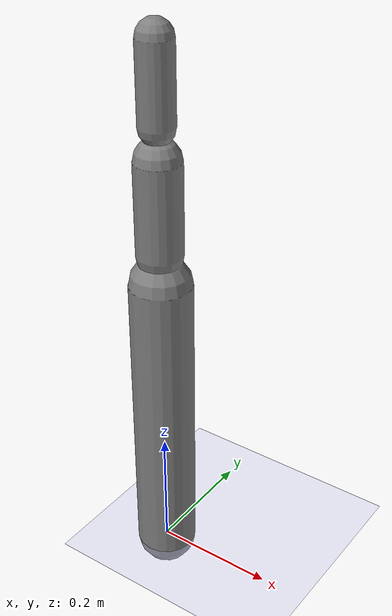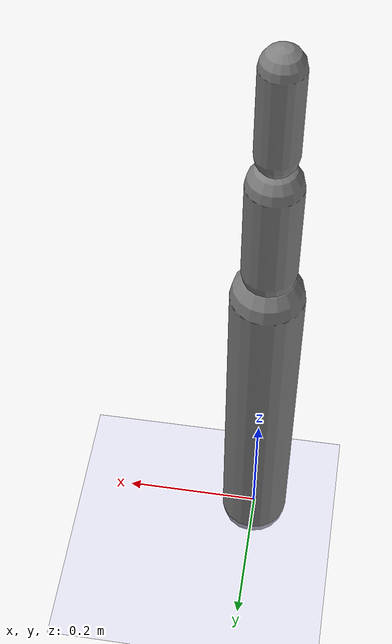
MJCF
<?xml version='1.0' encoding='UTF-8'?>
<mujoco model="robot_model">
  <option gravity="0 0 -9.81" timestep="0.001" solver="CG" iterations="500" integrator="Euler"/>
  <worldbody>
    <light name="light" pos="0 -3 10" dir="0 0.5 -1" diffuse=".8 .8 .8" specular="0.1 0.1 0.1"/>
    <geom name="floor" type="plane" size="10.0 10.0 0.1" pos="0 0 0" rgba="0.8 0.8 1 1" material=""/>
    <body name="limb0" pos="0 0 0">
      <geom type="capsule" fromto="0 0 0 0 0 0.5" size="0.05" density="1000" contype="0" conaffinity="0"/>
      <site type="sphere" size="0.01" name="limb0_site0" pos="0 0 0.5"/>
      <site type="sphere" size="0.01" name="limb0_site1" pos="0 0 0.5"/>
      <body name="limb0_4e27bdc1" pos="0 0 0.55">
        <geom type="capsule" fromto="0 0 0 0 0 0.19303415374711014" size="0.010191572480449522" density="800" contype="0" conaffinity="0"/>
        <joint name="joint_limb0_limb0_4e27bdc1_0" type="hinge" axis="1 0 0" range="-60 60" damping="10.0"/>
      </body>
      <body name="limb1_4e27bdc1" pos="0 0 0.55">
        <geom type="capsule" fromto="0 0 0 0 0 0.14672900208316594" size="0.03664914336307394" density="800" contype="0" conaffinity="0"/>
        <site type="sphere" size="0.01" name="limb1_4e27bdc1_site0" pos="0 0 0.14672900208316594"/>
        <body name="limb2_4e27bdc1" pos="0 0 0.19672900208316596">
          <geom type="capsule" fromto="0 0 0 0 0 0.12282145869543623" size="0.027874732059313446" density="800" contype="0" conaffinity="0"/>
          <joint name="joint_limb1_4e27bdc1_limb2_4e27bdc1_0" type="hinge" axis="0 1 0" range="-45 45" damping="10.0"/>
        </body>
        <joint name="joint_limb0_limb1_4e27bdc1_0" type="hinge" axis="1 0 0" range="-60 60" damping="10.0"/>
      </body>
    </body>
  </worldbody>
  <actuator>
    <position name="position_actuator_joint_limb1_4e27bdc1_limb2_4e27bdc1_0" joint="joint_limb1_4e27bdc1_limb2_4e27bdc1_0" gear="50.0" inheritrange="1" kp="100.0"/>
  </actuator>
</mujoco>
